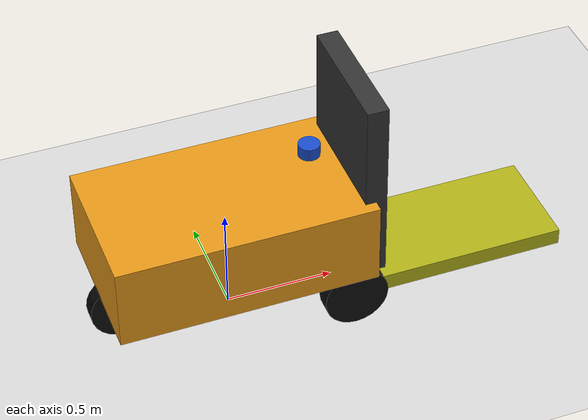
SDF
<?xml version="1.0" ?>
<!-- 叉車錄影世界:forklift_test + Sensors system + 一台俯視相機(連續存影格)。
     CI 用 EGL headless 渲染,相機把影格存到 /tmp/frames,再 ffmpeg 合成 mp4。 -->
<sdf version="1.10">
  <world name="forklift_video">

    <gravity>0 0 -9.8</gravity>
    <physics name="default" type="ode">
      <max_step_size>0.001</max_step_size>
      <real_time_factor>1</real_time_factor>
    </physics>

    <plugin filename="gz-sim-physics-system"           name="gz::sim::systems::Physics"/>
    <plugin filename="gz-sim-user-commands-system"     name="gz::sim::systems::UserCommands"/>
    <plugin filename="gz-sim-scene-broadcaster-system" name="gz::sim::systems::SceneBroadcaster"/>
    <!-- 相機要出影格,必掛 Sensors system -->
    <plugin filename="gz-sim-sensors-system"           name="gz::sim::systems::Sensors">
      <render_engine>ogre2</render_engine>
    </plugin>

    <scene>
      <ambient>0.5 0.5 0.5 1</ambient>
      <background>0.7 0.8 0.9 1</background>
      <shadows>true</shadows>
    </scene>

    <light name="sun" type="directional">
      <pose>0 0 10 0 0 0</pose>
      <diffuse>0.9 0.9 0.9 1</diffuse>
      <specular>0.3 0.3 0.3 1</specular>
      <direction>0.3 0.3 -1</direction>
      <cast_shadows>true</cast_shadows>
    </light>

    <model name="ground">
      <static>true</static>
      <link name="link">
        <collision name="collision">
          <geometry><plane><normal>0 0 1</normal><size>50 50</size></plane></geometry>
          <surface><friction><ode><mu>1.0</mu><mu2>1.0</mu2></ode></friction></surface>
        </collision>
        <visual name="visual">
          <geometry><plane><normal>0 0 1</normal><size>50 50</size></plane></geometry>
          <material><ambient>0.85 0.85 0.85 1</ambient><diffuse>0.85 0.85 0.85 1</diffuse></material>
        </visual>
      </link>
    </model>

    <!-- 俯視相機:看叉車從原點往 -X/-Y 走的那塊區域;save 連續存影格 -->
    <model name="rec_cam">
      <static>true</static>
      <pose>0 0 8 0 1.5708 0</pose>
      <link name="link">
        <sensor name="cam" type="camera">
          <camera>
            <horizontal_fov>1.0</horizontal_fov>
            <image><width>960</width><height>720</height></image>
            <clip><near>0.1</near><far>60</far></clip>
            <save enabled="true"><path>/tmp/frames</path></save>
          </camera>
          <always_on>1</always_on>
          <update_rate>10</update_rate>
          <topic>rec_cam</topic>
        </sensor>
      </link>
    </model>

    <include>
      <uri>model://forklift</uri>
      <pose>0 0 0 0 0 0</pose>
    </include>

  </world>
</sdf>

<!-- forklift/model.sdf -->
<sdf version="1.10">
  <model name="forklift">

    <!-- ===== 車身 ===== -->
    <link name="base_link">
      <pose>0 0 0.45 0 0 0</pose>
      <inertial>
        <mass>80</mass>
        <inertia>
          <ixx>4.333</ixx><ixy>0</ixy><ixz>0</ixz>
          <iyy>10.667</iyy><iyz>0</iyz><izz>12.867</izz>
        </inertia>
      </inertial>
      <collision name="collision">
        <geometry><box><size>1.2 0.7 0.4</size></box></geometry>
      </collision>
      <visual name="visual">
        <geometry><box><size>1.2 0.7 0.4</size></box></geometry>
        <material><ambient>0.9 0.6 0.1 1</ambient><diffuse>0.9 0.6 0.1 1</diffuse></material>
      </visual>
      <!-- 桅杆視覺(叉子端立柱,純好看)-->
      <visual name="mast">
        <pose>0.6 0 0.25 0 0 0</pose>
        <geometry><box><size>0.1 0.6 0.9</size></box></geometry>
        <material><ambient>0.2 0.2 0.2 1</ambient><diffuse>0.2 0.2 0.2 1</diffuse></material>
      </visual>
    </link>

    <!-- ===== 舵輪轉向樞紐(steer_link)===== -->
    <link name="steer_link">
      <pose>-0.5 0 0.15 0 0 0</pose>
      <inertial>
        <mass>2</mass>
        <inertia><ixx>0.0048</ixx><ixy>0</ixy><ixz>0</ixz><iyy>0.0048</iyy><iyz>0</iyz><izz>0.0048</izz></inertia>
      </inertial>
      <visual name="visual">
        <geometry><box><size>0.12 0.12 0.12</size></box></geometry>
        <material><ambient>0.1 0.1 0.1 1</ambient><diffuse>0.1 0.1 0.1 1</diffuse></material>
      </visual>
    </link>

    <!-- ===== 舵輪(驅動輪)===== -->
    <link name="traction_wheel">
      <pose>-0.5 0 0.15 1.5708 0 0</pose>
      <inertial>
        <mass>5</mass>
        <inertia><ixx>0.0308</ixx><ixy>0</ixy><ixz>0</ixz><iyy>0.0308</iyy><iyz>0</iyz><izz>0.05625</izz></inertia>
      </inertial>
      <collision name="collision">
        <geometry><cylinder><radius>0.15</radius><length>0.08</length></cylinder></geometry>
        <surface><friction><ode><mu>1.2</mu><mu2>1.2</mu2></ode></friction></surface>
      </collision>
      <visual name="visual">
        <geometry><cylinder><radius>0.15</radius><length>0.08</length></cylinder></geometry>
        <material><ambient>0.05 0.05 0.05 1</ambient><diffuse>0.05 0.05 0.05 1</diffuse></material>
      </visual>
    </link>

    <!-- ===== 兩顆從動承載輪(叉子端)===== -->
    <link name="left_load_wheel">
      <pose>0.5 0.3 0.15 1.5708 0 0</pose>
      <inertial>
        <mass>4</mass>
        <inertia><ixx>0.02463</ixx><ixy>0</ixy><ixz>0</ixz><iyy>0.02463</iyy><iyz>0</iyz><izz>0.045</izz></inertia>
      </inertial>
      <collision name="collision">
        <geometry><cylinder><radius>0.15</radius><length>0.08</length></cylinder></geometry>
        <surface><friction><ode><mu>0.6</mu><mu2>0.6</mu2></ode></friction></surface>
      </collision>
      <visual name="visual">
        <geometry><cylinder><radius>0.15</radius><length>0.08</length></cylinder></geometry>
        <material><ambient>0.05 0.05 0.05 1</ambient><diffuse>0.05 0.05 0.05 1</diffuse></material>
      </visual>
    </link>
    <link name="right_load_wheel">
      <pose>0.5 -0.3 0.15 1.5708 0 0</pose>
      <inertial>
        <mass>4</mass>
        <inertia><ixx>0.02463</ixx><ixy>0</ixy><ixz>0</ixz><iyy>0.02463</iyy><iyz>0</iyz><izz>0.045</izz></inertia>
      </inertial>
      <collision name="collision">
        <geometry><cylinder><radius>0.15</radius><length>0.08</length></cylinder></geometry>
        <surface><friction><ode><mu>0.6</mu><mu2>0.6</mu2></ode></friction></surface>
      </collision>
      <visual name="visual">
        <geometry><cylinder><radius>0.15</radius><length>0.08</length></cylinder></geometry>
        <material><ambient>0.05 0.05 0.05 1</ambient><diffuse>0.05 0.05 0.05 1</diffuse></material>
      </visual>
    </link>

    <!-- ===== 叉子(可升降)===== -->
    <link name="fork_carriage">
      <pose>1.05 0 0.1 0 0 0</pose>
      <inertial>
        <mass>12</mass>
        <inertia><ixx>0.2564</ixx><ixy>0</ixy><ixz>0</ixz><iyy>1.0064</iyy><iyz>0</iyz><izz>1.25</izz></inertia>
      </inertial>
      <collision name="collision">
        <geometry><box><size>1.0 0.5 0.08</size></box></geometry>
      </collision>
      <visual name="visual">
        <geometry><box><size>1.0 0.5 0.08</size></box></geometry>
        <material><ambient>0.7 0.7 0.1 1</ambient><diffuse>0.7 0.7 0.1 1</diffuse></material>
      </visual>
    </link>

    <!-- ===== 2D LiDAR(SLAM 用,gpu_lidar 360°)===== -->
    <link name="lidar_link">
      <pose>0.4 0 0.78 0 0 0</pose>
      <inertial>
        <mass>0.3</mass>
        <inertia><ixx>0.0005</ixx><ixy>0</ixy><ixz>0</ixz><iyy>0.0005</iyy><iyz>0</iyz><izz>0.0005</izz></inertia>
      </inertial>
      <visual name="visual">
        <geometry><cylinder><radius>0.05</radius><length>0.06</length></cylinder></geometry>
        <material><ambient>0.1 0.3 0.8 1</ambient><diffuse>0.1 0.3 0.8 1</diffuse></material>
      </visual>
      <sensor name="lidar" type="gpu_lidar">
        <topic>scan</topic>
        <gz_frame_id>lidar_link</gz_frame_id>
        <update_rate>10</update_rate>
        <lidar>
          <scan>
            <horizontal>
              <samples>360</samples><resolution>1</resolution>
              <min_angle>-3.14159</min_angle><max_angle>3.14159</max_angle>
            </horizontal>
          </scan>
          <range><min>0.2</min><max>12.0</max><resolution>0.01</resolution></range>
        </lidar>
        <always_on>1</always_on>
        <visualize>true</visualize>
      </sensor>
    </link>

    <!-- ===== 關節 ===== -->
    <!-- LiDAR 固定在車身 -->
    <joint name="lidar_joint" type="fixed">
      <parent>base_link</parent><child>lidar_link</child>
    </joint>
    <!-- 轉向:base → steer_link,繞 Z -->
    <joint name="steering_joint" type="revolute">
      <parent>base_link</parent><child>steer_link</child>
      <axis><xyz>0 0 1</xyz><limit><lower>-0.7</lower><upper>0.7</upper><effort>200</effort><velocity>2</velocity></limit></axis>
    </joint>
    <!-- 驅動:steer_link → 舵輪,繞 Y(連續)-->
    <joint name="traction_joint" type="revolute">
      <parent>steer_link</parent><child>traction_wheel</child>
      <axis><xyz>0 1 0</xyz><limit><lower>-1e16</lower><upper>1e16</upper><effort>200</effort><velocity>50</velocity></limit></axis>
    </joint>
    <!-- 從動輪(被動,繞 Y 自由滾)-->
    <joint name="left_load_joint" type="revolute">
      <parent>base_link</parent><child>left_load_wheel</child>
      <axis><xyz>0 1 0</xyz><limit><lower>-1e16</lower><upper>1e16</upper><effort>0</effort><velocity>50</velocity></limit></axis>
    </joint>
    <joint name="right_load_joint" type="revolute">
      <parent>base_link</parent><child>right_load_wheel</child>
      <axis><xyz>0 1 0</xyz><limit><lower>-1e16</lower><upper>1e16</upper><effort>0</effort><velocity>50</velocity></limit></axis>
    </joint>
    <!-- 叉子升降:base → fork_carriage,沿 Z(prismatic)-->
    <joint name="fork_joint" type="prismatic">
      <parent>base_link</parent><child>fork_carriage</child>
      <axis><xyz>0 0 1</xyz><limit><lower>0</lower><upper>0.5</upper><effort>3000</effort><velocity>0.3</velocity></limit></axis>
    </joint>

    <!-- ===== gz 原生控制 plugin(純 Gazebo,不需 ROS 2)===== -->
    <!-- 里程計:發布 odom 與 odom→base_link tf(SLAM 需要)。此為模擬里程,
         實機由輪速/編碼器估算;gpu_lidar 出 /scan 還需 world 掛 Sensors system。 -->
    <plugin filename="gz-sim-odometry-publisher-system" name="gz::sim::systems::OdometryPublisher">
      <odom_frame>odom</odom_frame>
      <robot_base_frame>base_link</robot_base_frame>
      <dimensions>2</dimensions>
    </plugin>
    <!-- 舵輪驅動:速度命令(gz.msgs.Double, rad/s)-->
    <plugin filename="gz-sim-joint-controller-system" name="gz::sim::systems::JointController">
      <joint_name>traction_joint</joint_name>
      <topic>/forklift/traction</topic>
    </plugin>
    <!-- 轉向:位置命令(gz.msgs.Double, rad)。PID 待調 -->
    <plugin filename="gz-sim-joint-position-controller-system" name="gz::sim::systems::JointPositionController">
      <joint_name>steering_joint</joint_name>
      <topic>/forklift/steer</topic>
      <p_gain>30</p_gain><i_gain>0.5</i_gain><d_gain>3</d_gain>
    </plugin>
    <!-- 叉子升降:位置命令(gz.msgs.Double, m)。要頂重力,p_gain 較大,待調 -->
    <plugin filename="gz-sim-joint-position-controller-system" name="gz::sim::systems::JointPositionController">
      <joint_name>fork_joint</joint_name>
      <topic>/forklift/fork</topic>
      <p_gain>8000</p_gain><i_gain>20</i_gain><d_gain>200</d_gain>
    </plugin>
    <!-- 發布車身位姿,供「它有沒有動」的測試讀取 -->
    <plugin filename="gz-sim-pose-publisher-system" name="gz::sim::systems::PosePublisher">
      <publish_model_pose>true</publish_model_pose>
      <publish_link_pose>false</publish_link_pose>
      <use_pose_vector_msg>true</use_pose_vector_msg>
      <update_frequency>20</update_frequency>
    </plugin>

  </model>
</sdf>
